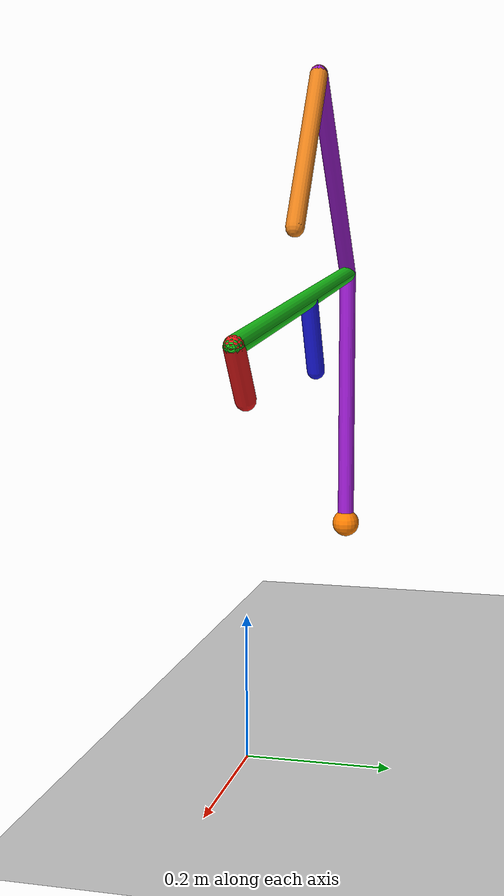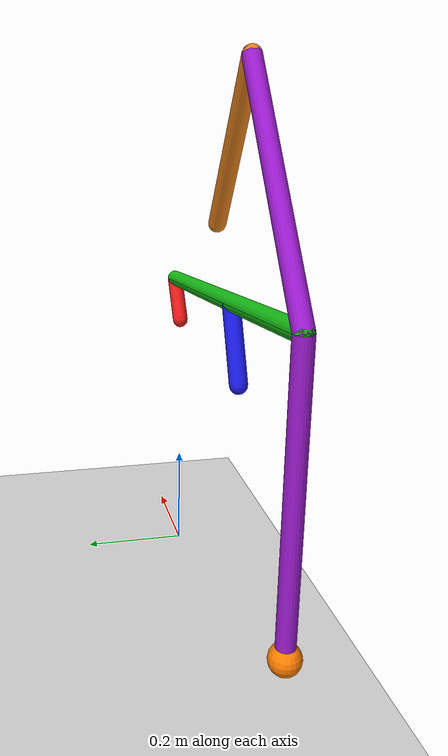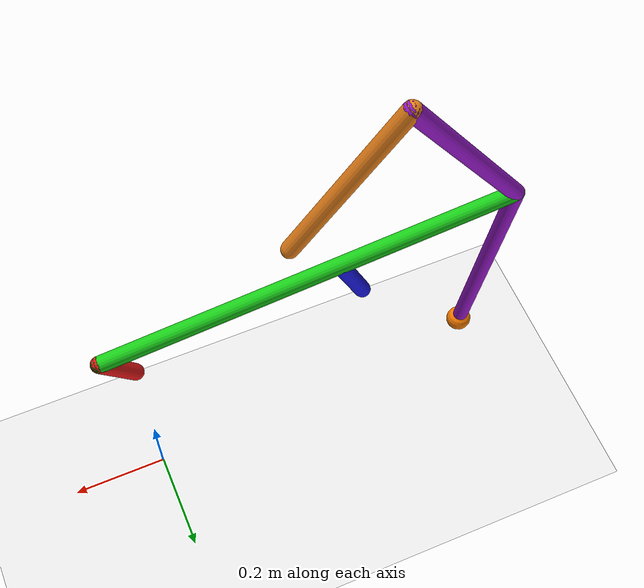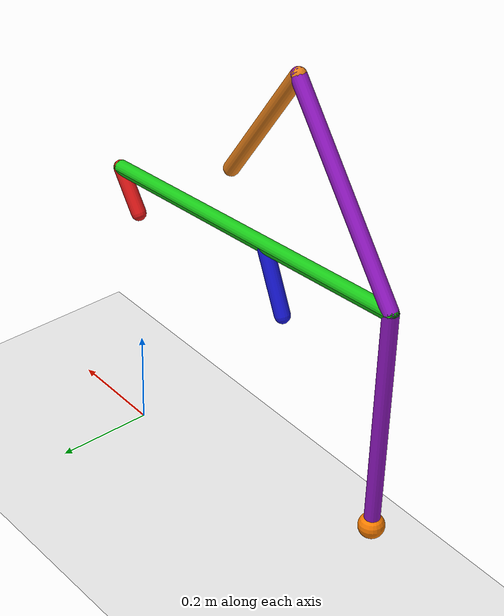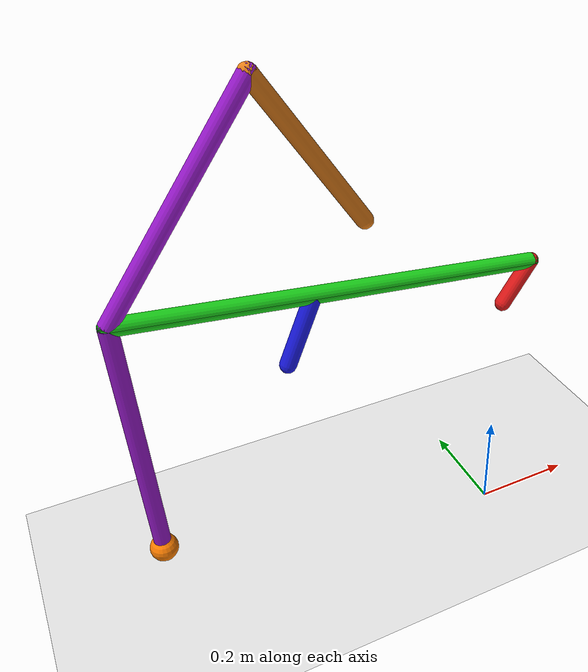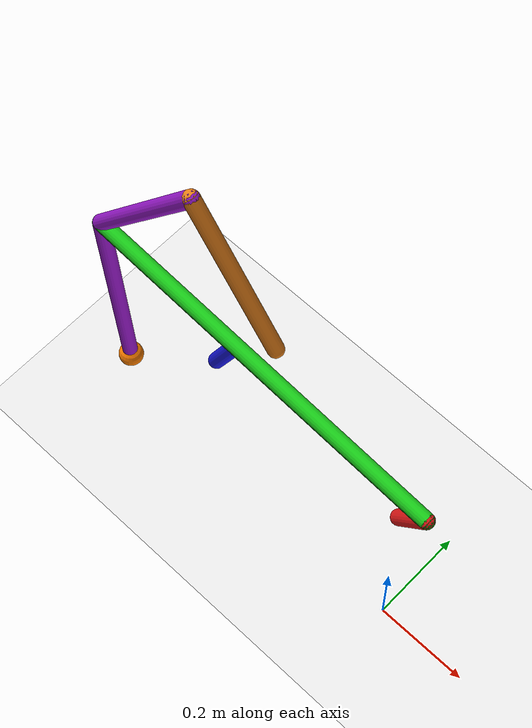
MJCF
<mujoco model="klann_linkage">

    <compiler angle="degree"/>

    <!-- シミュレーション全体のオプション設定 -->
    <option gravity="0 0 -9.80665"/>

    <!-- デフォルト設定 -->
    <default>
        <geom type="capsule" size="0.015" density="1000"/>
        <joint type="hinge" axis="0 1 0" damping="0.05"/>
    </default>

    <asset>
        <material name="grid" texture="grid" texrepeat="1 1" texuniform="true"/>
        <texture type="2d" name="grid" builtin="checker" rgb1=".1 .2 .3" rgb2=".2 .3 .4"
                 width="300" height="300" mark="edge" markrgb=".2 .3 .4"/>
    </asset>

    <worldbody>
        <!-- 照明と床 -->
        <light pos="0 -1 2" dir="0 1 -1" diffuse="1 1 1"/>
        <geom name="floor" type="plane" size="5 5 0.1" rgba="0.9 0.9 0.9 1" material="grid"/>

        <!-- フレーム（固定構造の可視化: C3-C5-C2 を結ぶ三角形） -->
        <!-- これがあると動作しないのでコメントアウト -->

        <!--
          【木構造1】クランク→カプラー→足部の直列チェーン
        -->

        <!-- クランク（Link 2: C3→C4、モーター駆動） -->
        <body name="crank" pos="0 0 0.5">
            <joint name="crank_joint"/>
            <geom name="crank_link" fromto="0 0 0 0.0542 0 0.0778"
                  rgba="0.9 0.1 0.1 1"/>

            <!-- カプラー（Link 1: 三角形リンク C4-C6-C8） -->
            <body name="coupler" pos="0.0542 0 0.0778">
                <joint name="coupler_joint"/>
                <geom name="coupler_C4_C6" fromto="0 0 0 -0.4321 0 0.0446" rgba="0.1 0.8 0.1 1"/>
                <geom name="coupler_C4_C8" fromto="0 0 0 -0.7557 0 0.0790" rgba="0.1 0.8 0.1 1"/>
                <geom name="coupler_C6_C8" fromto="-0.4321 0 0.0446 -0.7557 0 0.0790" rgba="0.1 0.8 0.1 1"/>

                <!-- 足部（Links 5+6: 三角形リンク C7-C8-C1） -->
                <body name="foot" pos="-0.7557 0 0.0790">
                    <joint name="foot_joint"/>
                    <geom name="foot_C8_C7" fromto="0 0 0 0.2475 0 0.3359" rgba="0.6 0.1 0.8 1"/>
                    <geom name="foot_C8_C1" fromto="0 0 0 0.0123 0 -0.4724" rgba="0.6 0.1 0.8 1"/>
                    <!-- 足先の接地球（C1: 地面と接触する） -->
                    <geom name="foot_tip" type="sphere" pos="0.0123 0 -0.4724" size="0.025" rgba="1 0.5 0 1"/>
                </body>
            </body>
        </body>

        <!--
          【木構造2】ロッカー1（Link 0: C5→C6）
        -->
        <body name="rocker1" pos="-0.431 0 0.5">
            <joint name="rocker1_joint"/>
            <geom name="rocker1_link" fromto="0 0 0 0.0530 0 0.1225" rgba="0.1 0.1 0.9 1"/>
        </body>

        <!--
          【木構造3】ロッカー2（Link 3: C2→C7）
        -->
        <body name="rocker2" pos="-0.2835 0 0.7365">
            <joint name="rocker2_joint"/>
            <geom name="rocker2_link" fromto="0 0 0 -0.1706 0 0.2563" rgba="0.9 0.5 0.1 1"/>
        </body>
    </worldbody>

    <!-- 閉ループ拘束: 切断されたリンクの先端を等式拘束で結合する -->
    <equality>
        <!-- カプラーの C6 点とロッカー1 の C6 点を接続 -->
        <connect body1="coupler" body2="rocker1" anchor="-0.4321 0 0.0446" solref="0.005 1" solimp="0.99 0.99 0.001"/>
        <!-- 足部の C7 点とロッカー2 の C7 点を接続 -->
        <connect body1="foot" body2="rocker2" anchor="0.2475 0 0.3359" solref="0.005 1" solimp="0.99 0.99 0.001"/>
    </equality>

    <!-- 隣接するリンク同士の衝突判定を除外する -->
    <contact>
        <exclude body1="crank" body2="coupler"/>
        <exclude body1="coupler" body2="foot"/>
        <exclude body1="coupler" body2="rocker1"/>
        <exclude body1="foot" body2="rocker2"/>
    </contact>

    <!-- 動作確認用のモーター（クランクのジョイントを動かす） -->
    <actuator>
        <motor name="crank_motor" joint="crank_joint" ctrlrange="-10 10" gear="1"/>
    </actuator>
</mujoco>
